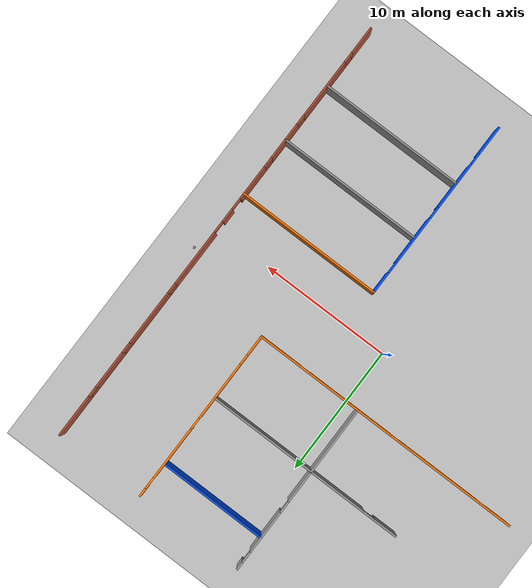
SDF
<sdf version="1.6">
 <world name="default">
  <model name="ground_plane">
   <static>1</static>
   <link name="link">
    <collision name="collision">
     <geometry><plane><normal>0 0 1</normal><size>100 100</size></plane></geometry>
     <surface>
      <contact><collide_bitmask>65535</collide_bitmask></contact>
      <friction><ode><mu>100</mu><mu2>50</mu2></ode></friction>
     </surface>
    </collision>
    <visual name="visual">
     <cast_shadows>0</cast_shadows>
     <geometry><plane><normal>0 0 1</normal><size>100 100</size></plane></geometry>
     <material>
      <script><uri>file://media/materials/scripts/gazebo.material</uri><name>Gazebo/Grey</name></script>
     </material>
    </visual>
   </link>
  </model>
  <model name="mybuilding">
   <pose>-3.17483 0.2831 0 0 -0 0</pose>
   <link name="Wall_20">
    <pose>6.31065 -10.25 0 0 -0 1.5708</pose>
    <visual name="Wall_20_Visual_0">
     <pose>-5.98664 0 1.25 0 -0 0</pose>
     <geometry><box><size>2.27671 0.15 2.5</size></box></geometry>
     <material>
      <script><uri>file://media/materials/scripts/gazebo.material</uri><name>Gazebo/Grey</name></script>
      <ambient>0 0.333333 1 1</ambient>
     </material>
     <meta><layer>0</layer></meta>
    </visual>
    <collision name="Wall_20_Collision_0">
     <geometry><box><size>2.27671 0.15 2.5</size></box></geometry>
     <pose>-5.98664 0 1.25 0 -0 0</pose>
    </collision>
    <visual name="Wall_20_Visual_1">
     <pose>-2.09265 0 1.25 0 -0 0</pose>
     <geometry><box><size>3.71127 0.15 2.5</size></box></geometry>
     <material>
      <script><uri>file://media/materials/scripts/gazebo.material</uri><name>Gazebo/Grey</name></script>
      <ambient>0 0.333333 1 1</ambient>
     </material>
     <meta><layer>0</layer></meta>
    </visual>
    <collision name="Wall_20_Collision_1">
     <geometry><box><size>3.71127 0.15 2.5</size></box></geometry>
     <pose>-2.09265 0 1.25 0 -0 0</pose>
    </collision>
    <visual name="Wall_20_Visual_2">
     <pose>2.56568 0 1.25 0 -0 0</pose>
     <geometry><box><size>3.80538 0.15 2.5</size></box></geometry>
     <material>
      <script><uri>file://media/materials/scripts/gazebo.material</uri><name>Gazebo/Grey</name></script>
      <ambient>0 0.333333 1 1</ambient>
     </material>
     <meta><layer>0</layer></meta>
    </visual>
    <collision name="Wall_20_Collision_2">
     <geometry><box><size>3.80538 0.15 2.5</size></box></geometry>
     <pose>2.56568 0 1.25 0 -0 0</pose>
    </collision>
    <visual name="Wall_20_Visual_3">
     <pose>6.24668 0 1.25 0 -0 0</pose>
     <geometry><box><size>1.75663 0.15 2.5</size></box></geometry>
     <material>
      <script><uri>file://media/materials/scripts/gazebo.material</uri><name>Gazebo/Grey</name></script>
      <ambient>0 0.333333 1 1</ambient>
     </material>
     <meta><layer>0</layer></meta>
    </visual>
    <collision name="Wall_20_Collision_3">
     <geometry><box><size>1.75663 0.15 2.5</size></box></geometry>
     <pose>6.24668 0 1.25 0 -0 0</pose>
    </collision>
    <visual name="Wall_20_Visual_4">
     <pose>-4.39829 0 2.25 0 -0 0</pose>
     <geometry><box><size>0.9 0.15 0.5</size></box></geometry>
     <material>
      <script><uri>file://media/materials/scripts/gazebo.material</uri><name>Gazebo/Grey</name></script>
      <ambient>0 0.333333 1 1</ambient>
     </material>
     <meta><layer>0</layer></meta>
    </visual>
    <collision name="Wall_20_Collision_4">
     <geometry><box><size>0.9 0.15 0.5</size></box></geometry>
     <pose>-4.39829 0 2.25 0 -0 0</pose>
    </collision>
    <visual name="Wall_20_Visual_5">
     <pose>0.212986 0 2.25 0 -0 0</pose>
     <geometry><box><size>0.9 0.15 0.5</size></box></geometry>
     <material>
      <script><uri>file://media/materials/scripts/gazebo.material</uri><name>Gazebo/Grey</name></script>
      <ambient>0 0.333333 1 1</ambient>
     </material>
     <meta><layer>0</layer></meta>
    </visual>
    <collision name="Wall_20_Collision_5">
     <geometry><box><size>0.9 0.15 0.5</size></box></geometry>
     <pose>0.212986 0 2.25 0 -0 0</pose>
    </collision>
    <visual name="Wall_20_Visual_6">
     <pose>4.91837 0 2.25 0 -0 0</pose>
     <geometry><box><size>0.9 0.15 0.5</size></box></geometry>
     <material>
      <script><uri>file://media/materials/scripts/gazebo.material</uri><name>Gazebo/Grey</name></script>
      <ambient>0 0.333333 1 1</ambient>
     </material>
     <meta><layer>0</layer></meta>
    </visual>
    <collision name="Wall_20_Collision_6">
     <geometry><box><size>0.9 0.15 0.5</size></box></geometry>
     <pose>4.91837 0 2.25 0 -0 0</pose>
    </collision>
   </link>
   <link name="Wall_21">
    <collision name="Wall_21_Collision">
     <geometry><box><size>11.25 0.15 2.5</size></box></geometry>
     <pose>0 0 1.25 0 -0 0</pose>
    </collision>
    <visual name="Wall_21_Visual">
     <pose>0 0 1.25 0 -0 0</pose>
     <geometry><box><size>11.25 0.15 2.5</size></box></geometry>
     <material>
      <script><uri>file://media/materials/scripts/gazebo.material</uri><name>Gazebo/Grey</name></script>
      <ambient>0.996078 0.47451 0.0196078 1</ambient>
     </material>
     <meta><layer>0</layer></meta>
    </visual>
    <pose>11.8606 -3.19998 0 0 -0 0</pose>
   </link>
   <link name="Wall_23">
    <collision name="Wall_23_Collision">
     <geometry><box><size>11.25 0.15 2.5</size></box></geometry>
     <pose>0 0 1.25 0 -0 0</pose>
    </collision>
    <visual name="Wall_23_Visual">
     <pose>0 0 1.25 0 -0 0</pose>
     <geometry><box><size>11.25 0.15 2.5</size></box></geometry>
     <material>
      <script><uri>file://media/materials/scripts/gazebo.material</uri><name>Gazebo/Grey</name></script>
      <ambient>1 1 1 1</ambient>
     </material>
     <meta><layer>0</layer></meta>
    </visual>
    <pose>11.8606 -7.84879 0 0 -0 0</pose>
   </link>
   <link name="Wall_25">
    <collision name="Wall_25_Collision">
     <geometry><box><size>11 0.15 2.5</size></box></geometry>
     <pose>0 0 1.25 0 -0 0</pose>
    </collision>
    <visual name="Wall_25_Visual">
     <pose>0 0 1.25 0 -0 0</pose>
     <geometry><box><size>11 0.15 2.5</size></box></geometry>
     <material>
      <script><uri>file://media/materials/scripts/gazebo.material</uri><name>Gazebo/Grey</name></script>
      <ambient>1 1 1 1</ambient>
     </material>
     <meta><layer>0</layer></meta>
    </visual>
    <pose>11.8292 -12.5276 0 0 -0 0</pose>
   </link>
   <link name="Wall_35">
    <pose>0.006793 3.83302 0 0 -0 0</pose>
    <visual name="Wall_35_Visual_0">
     <pose>-9.77473 0 1.25 0 -0 0</pose>
     <geometry><box><size>1.70054 0.15 2.5</size></box></geometry>
     <material>
      <script><uri>file://media/materials/scripts/gazebo.material</uri><name>Gazebo/Grey</name></script>
      <ambient>0.996078 0.47451 0.0196078 1</ambient>
     </material>
     <meta><layer>0</layer></meta>
    </visual>
    <collision name="Wall_35_Collision_0">
     <geometry><box><size>1.70054 0.15 2.5</size></box></geometry>
     <pose>-9.77473 0 1.25 0 -0 0</pose>
    </collision>
    <visual name="Wall_35_Visual_1">
     <pose>-4.71016 0 1.25 0 -0 0</pose>
     <geometry><box><size>6.62861 0.15 2.5</size></box></geometry>
     <material>
      <script><uri>file://media/materials/scripts/gazebo.material</uri><name>Gazebo/Grey</name></script>
      <ambient>0.996078 0.47451 0.0196078 1</ambient>
     </material>
     <meta><layer>0</layer></meta>
    </visual>
    <collision name="Wall_35_Collision_1">
     <geometry><box><size>6.62861 0.15 2.5</size></box></geometry>
     <pose>-4.71016 0 1.25 0 -0 0</pose>
    </collision>
    <visual name="Wall_35_Visual_2">
     <pose>2.9412 0 1.25 0 -0 0</pose>
     <geometry><box><size>6.87411 0.15 2.5</size></box></geometry>
     <material>
      <script><uri>file://media/materials/scripts/gazebo.material</uri><name>Gazebo/Grey</name></script>
      <ambient>0.996078 0.47451 0.0196078 1</ambient>
     </material>
     <meta><layer>0</layer></meta>
    </visual>
    <collision name="Wall_35_Collision_2">
     <geometry><box><size>6.87411 0.15 2.5</size></box></geometry>
     <pose>2.9412 0 1.25 0 -0 0</pose>
    </collision>
    <visual name="Wall_35_Visual_3">
     <pose>8.95163 0 1.25 0 -0 0</pose>
     <geometry><box><size>3.34675 0.15 2.5</size></box></geometry>
     <material>
      <script><uri>file://media/materials/scripts/gazebo.material</uri><name>Gazebo/Grey</name></script>
      <ambient>0.996078 0.47451 0.0196078 1</ambient>
     </material>
     <meta><layer>0</layer></meta>
    </visual>
    <collision name="Wall_35_Collision_3">
     <geometry><box><size>3.34675 0.15 2.5</size></box></geometry>
     <pose>8.95163 0 1.25 0 -0 0</pose>
    </collision>
    <visual name="Wall_35_Visual_4">
     <pose>-8.47446 0 2.25 0 -0 0</pose>
     <geometry><box><size>0.9 0.15 0.5</size></box></geometry>
     <material>
      <script><uri>file://media/materials/scripts/gazebo.material</uri><name>Gazebo/Grey</name></script>
      <ambient>0.996078 0.47451 0.0196078 1</ambient>
     </material>
     <meta><layer>0</layer></meta>
    </visual>
    <collision name="Wall_35_Collision_4">
     <geometry><box><size>0.9 0.15 0.5</size></box></geometry>
     <pose>-8.47446 0 2.25 0 -0 0</pose>
    </collision>
    <visual name="Wall_35_Visual_5">
     <pose>-0.945851 0 2.25 0 -0 0</pose>
     <geometry><box><size>0.9 0.15 0.5</size></box></geometry>
     <material>
      <script><uri>file://media/materials/scripts/gazebo.material</uri><name>Gazebo/Grey</name></script>
      <ambient>0.996078 0.47451 0.0196078 1</ambient>
     </material>
     <meta><layer>0</layer></meta>
    </visual>
    <collision name="Wall_35_Collision_5">
     <geometry><box><size>0.9 0.15 0.5</size></box></geometry>
     <pose>-0.945851 0 2.25 0 -0 0</pose>
    </collision>
    <visual name="Wall_35_Visual_6">
     <pose>6.82825 0 2.25 0 -0 0</pose>
     <geometry><box><size>0.9 0.15 0.5</size></box></geometry>
     <material>
      <script><uri>file://media/materials/scripts/gazebo.material</uri><name>Gazebo/Grey</name></script>
      <ambient>0.996078 0.47451 0.0196078 1</ambient>
     </material>
     <meta><layer>0</layer></meta>
    </visual>
    <collision name="Wall_35_Collision_6">
     <geometry><box><size>0.9 0.15 0.5</size></box></geometry>
     <pose>6.82825 0 2.25 0 -0 0</pose>
    </collision>
   </link>
   <link name="Wall_37">
    <pose>10.5568 10.608 0 0 -0 1.5708</pose>
    <visual name="Wall_37_Visual_0">
     <pose>-6.03177 0 1.25 0 -0 0</pose>
     <geometry><box><size>1.63647 0.15 2.5</size></box></geometry>
     <material>
      <script><uri>file://media/materials/scripts/gazebo.material</uri><name>Gazebo/Grey</name></script>
      <ambient>0.996078 0.47451 0.0196078 1</ambient>
     </material>
     <meta><layer>0</layer></meta>
    </visual>
    <collision name="Wall_37_Collision_0">
     <geometry><box><size>1.63647 0.15 2.5</size></box></geometry>
     <pose>-6.03177 0 1.25 0 -0 0</pose>
    </collision>
    <visual name="Wall_37_Visual_1">
     <pose>3.17289 0 1.25 0 -0 0</pose>
     <geometry><box><size>4.16443 0.15 2.5</size></box></geometry>
     <material>
      <script><uri>file://media/materials/scripts/gazebo.material</uri><name>Gazebo/Grey</name></script>
      <ambient>0.996078 0.47451 0.0196078 1</ambient>
     </material>
     <meta><layer>0</layer></meta>
    </visual>
    <collision name="Wall_37_Collision_1">
     <geometry><box><size>4.16443 0.15 2.5</size></box></geometry>
     <pose>3.17289 0 1.25 0 -0 0</pose>
    </collision>
    <visual name="Wall_37_Visual_2">
     <pose>6.50255 0 1.25 0 -0 0</pose>
     <geometry><box><size>0.694895 0.15 2.5</size></box></geometry>
     <material>
      <script><uri>file://media/materials/scripts/gazebo.material</uri><name>Gazebo/Grey</name></script>
      <ambient>0.996078 0.47451 0.0196078 1</ambient>
     </material>
     <meta><layer>0</layer></meta>
    </visual>
    <collision name="Wall_37_Collision_2">
     <geometry><box><size>0.694895 0.15 2.5</size></box></geometry>
     <pose>6.50255 0 1.25 0 -0 0</pose>
    </collision>
    <visual name="Wall_37_Visual_3">
     <pose>-2.51143 0 0.25 0 -0 0</pose>
     <geometry><box><size>5.40421 0.15 0.5</size></box></geometry>
     <material>
      <script><uri>file://media/materials/scripts/gazebo.material</uri><name>Gazebo/Grey</name></script>
      <ambient>0.996078 0.47451 0.0196078 1</ambient>
     </material>
     <meta><layer>0</layer></meta>
    </visual>
    <collision name="Wall_37_Collision_3">
     <geometry><box><size>5.40421 0.15 0.5</size></box></geometry>
     <pose>-2.51143 0 0.25 0 -0 0</pose>
    </collision>
    <visual name="Wall_37_Visual_4">
     <pose>-2.11143 0 1.5 0 -0 0</pose>
     <geometry><box><size>4.60421 0.15 2</size></box></geometry>
     <material>
      <script><uri>file://media/materials/scripts/gazebo.material</uri><name>Gazebo/Grey</name></script>
      <ambient>0.996078 0.47451 0.0196078 1</ambient>
     </material>
     <meta><layer>0</layer></meta>
    </visual>
    <collision name="Wall_37_Collision_4">
     <geometry><box><size>4.60421 0.15 2</size></box></geometry>
     <pose>-2.11143 0 1.5 0 -0 0</pose>
    </collision>
    <visual name="Wall_37_Visual_5">
     <pose>-4.81353 0 1.9 0 -0 0</pose>
     <geometry><box><size>0.8 0.15 1.2</size></box></geometry>
     <material>
      <script><uri>file://media/materials/scripts/gazebo.material</uri><name>Gazebo/Grey</name></script>
      <ambient>0.996078 0.47451 0.0196078 1</ambient>
     </material>
     <meta><layer>0</layer></meta>
    </visual>
    <collision name="Wall_37_Collision_5">
     <geometry><box><size>0.8 0.15 1.2</size></box></geometry>
     <pose>-4.81353 0 1.9 0 -0 0</pose>
    </collision>
    <visual name="Wall_37_Visual_6">
     <pose>5.7051 0 2.25 0 -0 0</pose>
     <geometry><box><size>0.9 0.15 0.5</size></box></geometry>
     <material>
      <script><uri>file://media/materials/scripts/gazebo.material</uri><name>Gazebo/Grey</name></script>
      <ambient>0.996078 0.47451 0.0196078 1</ambient>
     </material>
     <meta><layer>0</layer></meta>
    </visual>
    <collision name="Wall_37_Collision_6">
     <geometry><box><size>0.9 0.15 0.5</size></box></geometry>
     <pose>5.7051 0 2.25 0 -0 0</pose>
    </collision>
    <visual name="Wall_37_Visual_7">
     <pose>0.640675 0 2.25 0 -0 0</pose>
     <geometry><box><size>0.9 0.15 0.5</size></box></geometry>
     <material>
      <script><uri>file://media/materials/scripts/gazebo.material</uri><name>Gazebo/Grey</name></script>
      <ambient>0.996078 0.47451 0.0196078 1</ambient>
     </material>
     <meta><layer>0</layer></meta>
    </visual>
    <collision name="Wall_37_Collision_7">
     <geometry><box><size>0.9 0.15 0.5</size></box></geometry>
     <pose>0.640675 0 2.25 0 -0 0</pose>
    </collision>
   </link>
   <link name="Wall_41">
    <pose>2.30679 15.983 0 0 -0 1.5708</pose>
    <visual name="Wall_41_Visual_0">
     <pose>-0.747448 0 1.25 0 -0 0</pose>
     <geometry><box><size>1.2551 0.15 2.5</size></box></geometry>
     <material>
      <script><uri>file://media/materials/scripts/gazebo.material</uri><name>Gazebo/Grey</name></script>
      <ambient>1 1 1 1</ambient>
     </material>
     <meta><layer>0</layer></meta>
    </visual>
    <collision name="Wall_41_Collision_0">
     <geometry><box><size>1.2551 0.15 2.5</size></box></geometry>
     <pose>-0.747448 0 1.25 0 -0 0</pose>
    </collision>
    <visual name="Wall_41_Visual_1">
     <pose>1.07755 0 1.25 0 -0 0</pose>
     <geometry><box><size>0.594895 0.15 2.5</size></box></geometry>
     <material>
      <script><uri>file://media/materials/scripts/gazebo.material</uri><name>Gazebo/Grey</name></script>
      <ambient>1 1 1 1</ambient>
     </material>
     <meta><layer>0</layer></meta>
    </visual>
    <collision name="Wall_41_Collision_1">
     <geometry><box><size>0.594895 0.15 2.5</size></box></geometry>
     <pose>1.07755 0 1.25 0 -0 0</pose>
    </collision>
    <visual name="Wall_41_Visual_2">
     <pose>0.330105 0 2.25 0 -0 0</pose>
     <geometry><box><size>0.9 0.15 0.5</size></box></geometry>
     <material>
      <script><uri>file://media/materials/scripts/gazebo.material</uri><name>Gazebo/Grey</name></script>
      <ambient>1 1 1 1</ambient>
     </material>
     <meta><layer>0</layer></meta>
    </visual>
    <collision name="Wall_41_Collision_2">
     <geometry><box><size>0.9 0.15 0.5</size></box></geometry>
     <pose>0.330105 0 2.25 0 -0 0</pose>
    </collision>
   </link>
   <link name="Wall_43">
    <collision name="Wall_43_Collision">
     <geometry><box><size>8.25 0.15 2.5</size></box></geometry>
     <pose>0 0 1.25 0 -0 0</pose>
    </collision>
    <visual name="Wall_43_Visual">
     <pose>0 0 1.25 0 -0 0</pose>
     <geometry><box><size>8.25 0.15 2.5</size></box></geometry>
     <material>
      <script><uri>file://media/materials/scripts/gazebo.material</uri><name>Gazebo/Grey</name></script>
      <ambient>0 0.333333 1 1</ambient>
     </material>
     <meta><layer>0</layer></meta>
    </visual>
    <pose>6.35679 14.683 0 0 -0 0</pose>
   </link>
   <link name="Wall_45">
    <pose>2.30679 9.25802 0 0 0 -1.5708</pose>
    <visual name="Wall_45_Visual_0">
     <pose>-4.3795 0 1.25 0 -0 0</pose>
     <geometry><box><size>2.241 0.15 2.5</size></box></geometry>
     <material>
      <script><uri>file://media/materials/scripts/gazebo.material</uri><name>Gazebo/Grey</name></script>
      <ambient>1 1 1 1</ambient>
     </material>
     <meta><layer>0</layer></meta>
    </visual>
    <collision name="Wall_45_Collision_0">
     <geometry><box><size>2.241 0.15 2.5</size></box></geometry>
     <pose>-4.3795 0 1.25 0 -0 0</pose>
    </collision>
    <visual name="Wall_45_Visual_1">
     <pose>1.5705 0 1.25 0 -0 0</pose>
     <geometry><box><size>7.859 0.15 2.5</size></box></geometry>
     <material>
      <script><uri>file://media/materials/scripts/gazebo.material</uri><name>Gazebo/Grey</name></script>
      <ambient>1 1 1 1</ambient>
     </material>
     <meta><layer>0</layer></meta>
    </visual>
    <collision name="Wall_45_Collision_1">
     <geometry><box><size>7.859 0.15 2.5</size></box></geometry>
     <pose>1.5705 0 1.25 0 -0 0</pose>
    </collision>
    <visual name="Wall_45_Visual_2">
     <pose>-2.809 0 2.25 0 -0 0</pose>
     <geometry><box><size>0.9 0.15 0.5</size></box></geometry>
     <material>
      <script><uri>file://media/materials/scripts/gazebo.material</uri><name>Gazebo/Grey</name></script>
      <ambient>1 1 1 1</ambient>
     </material>
     <meta><layer>0</layer></meta>
    </visual>
    <collision name="Wall_45_Collision_2">
     <geometry><box><size>0.9 0.15 0.5</size></box></geometry>
     <pose>-2.809 0 2.25 0 -0 0</pose>
    </collision>
   </link>
   <link name="Wall_49">
    <pose>2.80199 9.06684 0 0 -0 0</pose>
    <visual name="Wall_49_Visual_0">
     <pose>-6.77635 0 1.25 0 -0 0</pose>
     <geometry><box><size>1.8973 0.15 2.5</size></box></geometry>
     <material>
      <script><uri>file://media/materials/scripts/gazebo.material</uri><name>Gazebo/Grey</name></script>
      <ambient>1 1 1 1</ambient>
     </material>
     <meta><layer>0</layer></meta>
    </visual>
    <collision name="Wall_49_Collision_0">
     <geometry><box><size>1.8973 0.15 2.5</size></box></geometry>
     <pose>-6.77635 0 1.25 0 -0 0</pose>
    </collision>
    <visual name="Wall_49_Visual_1">
     <pose>1.39865 0 1.25 0 -0 0</pose>
     <geometry><box><size>12.6527 0.15 2.5</size></box></geometry>
     <material>
      <script><uri>file://media/materials/scripts/gazebo.material</uri><name>Gazebo/Grey</name></script>
      <ambient>1 1 1 1</ambient>
     </material>
     <meta><layer>0</layer></meta>
    </visual>
    <collision name="Wall_49_Collision_1">
     <geometry><box><size>12.6527 0.15 2.5</size></box></geometry>
     <pose>1.39865 0 1.25 0 -0 0</pose>
    </collision>
    <visual name="Wall_49_Visual_2">
     <pose>-5.3777 0 2.25 0 -0 0</pose>
     <geometry><box><size>0.9 0.15 0.5</size></box></geometry>
     <material>
      <script><uri>file://media/materials/scripts/gazebo.material</uri><name>Gazebo/Grey</name></script>
      <ambient>1 1 1 1</ambient>
     </material>
     <meta><layer>0</layer></meta>
    </visual>
    <collision name="Wall_49_Collision_2">
     <geometry><box><size>0.9 0.15 0.5</size></box></geometry>
     <pose>-5.3777 0 2.25 0 -0 0</pose>
    </collision>
   </link>
   <link name="Wall_7">
    <pose>17.4025 -0.008779 0 0 -0 1.5708</pose>
    <visual name="Wall_7_Visual_0">
     <pose>-16.4134 0 1.25 0 -0 0</pose>
     <geometry><box><size>2.17315 0.15 2.5</size></box></geometry>
     <material>
      <script><uri>file://media/materials/scripts/gazebo.material</uri><name>Gazebo/Bricks</name></script>
      <ambient>1 1 1 1</ambient>
     </material>
     <meta><layer>0</layer></meta>
    </visual>
    <collision name="Wall_7_Collision_0">
     <geometry><box><size>2.17315 0.15 2.5</size></box></geometry>
     <pose>-16.4134 0 1.25 0 -0 0</pose>
    </collision>
    <visual name="Wall_7_Visual_1">
     <pose>-1.32327 0 1.25 0 -0 0</pose>
     <geometry><box><size>1.07626 0.15 2.5</size></box></geometry>
     <material>
      <script><uri>file://media/materials/scripts/gazebo.material</uri><name>Gazebo/Bricks</name></script>
      <ambient>1 1 1 1</ambient>
     </material>
     <meta><layer>0</layer></meta>
    </visual>
    <collision name="Wall_7_Collision_1">
     <geometry><box><size>1.07626 0.15 2.5</size></box></geometry>
     <pose>-1.32327 0 1.25 0 -0 0</pose>
    </collision>
    <visual name="Wall_7_Visual_2">
     <pose>2.32236 0 1.25 0 -0 0</pose>
     <geometry><box><size>4.41499 0.15 2.5</size></box></geometry>
     <material>
      <script><uri>file://media/materials/scripts/gazebo.material</uri><name>Gazebo/Bricks</name></script>
      <ambient>1 1 1 1</ambient>
     </material>
     <meta><layer>0</layer></meta>
    </visual>
    <collision name="Wall_7_Collision_2">
     <geometry><box><size>4.41499 0.15 2.5</size></box></geometry>
     <pose>2.32236 0 1.25 0 -0 0</pose>
    </collision>
    <visual name="Wall_7_Visual_3">
     <pose>-9.04412 0 0.25 0 -0 0</pose>
     <geometry><box><size>12.5655 0.15 0.5</size></box></geometry>
     <material>
      <script><uri>file://media/materials/scripts/gazebo.material</uri><name>Gazebo/Bricks</name></script>
      <ambient>1 1 1 1</ambient>
     </material>
     <meta><layer>0</layer></meta>
    </visual>
    <collision name="Wall_7_Collision_3">
     <geometry><box><size>12.5655 0.15 0.5</size></box></geometry>
     <pose>-9.04412 0 0.25 0 -0 0</pose>
    </collision>
    <visual name="Wall_7_Visual_4">
     <pose>11.0149 0 0.25 0 -0 0</pose>
     <geometry><box><size>12.9701 0.15 0.5</size></box></geometry>
     <material>
      <script><uri>file://media/materials/scripts/gazebo.material</uri><name>Gazebo/Bricks</name></script>
      <ambient>1 1 1 1</ambient>
     </material>
     <meta><layer>0</layer></meta>
    </visual>
    <collision name="Wall_7_Collision_4">
     <geometry><box><size>12.9701 0.15 0.5</size></box></geometry>
     <pose>11.0149 0 0.25 0 -0 0</pose>
    </collision>
    <visual name="Wall_7_Visual_5">
     <pose>-12.2448 0 1.5 0 -0 0</pose>
     <geometry><box><size>4.56413 0.15 2</size></box></geometry>
     <material>
      <script><uri>file://media/materials/scripts/gazebo.material</uri><name>Gazebo/Bricks</name></script>
      <ambient>1 1 1 1</ambient>
     </material>
     <meta><layer>0</layer></meta>
    </visual>
    <collision name="Wall_7_Collision_5">
     <geometry><box><size>4.56413 0.15 2</size></box></geometry>
     <pose>-12.2448 0 1.5 0 -0 0</pose>
    </collision>
    <visual name="Wall_7_Visual_6">
     <pose>-7.72762 0 1.5 0 -0 0</pose>
     <geometry><box><size>2.8702 0.15 2</size></box></geometry>
     <material>
      <script><uri>file://media/materials/scripts/gazebo.material</uri><name>Gazebo/Bricks</name></script>
      <ambient>1 1 1 1</ambient>
     </material>
     <meta><layer>0</layer></meta>
    </visual>
    <collision name="Wall_7_Collision_6">
     <geometry><box><size>2.8702 0.15 2</size></box></geometry>
     <pose>-7.72762 0 1.5 0 -0 0</pose>
    </collision>
    <visual name="Wall_7_Visual_7">
     <pose>-4.12696 0 1.5 0 -0 0</pose>
     <geometry><box><size>2.73112 0.15 2</size></box></geometry>
     <material>
      <script><uri>file://media/materials/scripts/gazebo.material</uri><name>Gazebo/Bricks</name></script>
      <ambient>1 1 1 1</ambient>
     </material>
     <meta><layer>0</layer></meta>
    </visual>
    <collision name="Wall_7_Collision_7">
     <geometry><box><size>2.73112 0.15 2</size></box></geometry>
     <pose>-4.12696 0 1.5 0 -0 0</pose>
    </collision>
    <visual name="Wall_7_Visual_8">
     <pose>-4.12696 0 1.5 0 -0 0</pose>
     <geometry><box><size>2.73112 0.15 2</size></box></geometry>
     <material>
      <script><uri>file://media/materials/scripts/gazebo.material</uri><name>Gazebo/Bricks</name></script>
      <ambient>1 1 1 1</ambient>
     </material>
     <meta><layer>0</layer></meta>
    </visual>
    <collision name="Wall_7_Collision_8">
     <geometry><box><size>2.73112 0.15 2</size></box></geometry>
     <pose>-4.12696 0 1.5 0 -0 0</pose>
    </collision>
    <visual name="Wall_7_Visual_9">
     <pose>7.47076 0 1.5 0 -0 0</pose>
     <geometry><box><size>4.28181 0.15 2</size></box></geometry>
     <material>
      <script><uri>file://media/materials/scripts/gazebo.material</uri><name>Gazebo/Bricks</name></script>
      <ambient>1 1 1 1</ambient>
     </material>
     <meta><layer>0</layer></meta>
    </visual>
    <collision name="Wall_7_Collision_9">
     <geometry><box><size>4.28181 0.15 2</size></box></geometry>
     <pose>7.47076 0 1.5 0 -0 0</pose>
    </collision>
    <visual name="Wall_7_Visual_10">
     <pose>11.8938 0 1.5 0 -0 0</pose>
     <geometry><box><size>2.9643 0.15 2</size></box></geometry>
     <material>
      <script><uri>file://media/materials/scripts/gazebo.material</uri><name>Gazebo/Bricks</name></script>
      <ambient>1 1 1 1</ambient>
     </material>
     <meta><layer>0</layer></meta>
    </visual>
    <collision name="Wall_7_Collision_10">
     <geometry><box><size>2.9643 0.15 2</size></box></geometry>
     <pose>11.8938 0 1.5 0 -0 0</pose>
    </collision>
    <visual name="Wall_7_Visual_11">
     <pose>15.838 0 1.5 0 -0 0</pose>
     <geometry><box><size>3.32403 0.15 2</size></box></geometry>
     <material>
      <script><uri>file://media/materials/scripts/gazebo.material</uri><name>Gazebo/Bricks</name></script>
      <ambient>1 1 1 1</ambient>
     </material>
     <meta><layer>0</layer></meta>
    </visual>
    <collision name="Wall_7_Collision_11">
     <geometry><box><size>3.32403 0.15 2</size></box></geometry>
     <pose>15.838 0 1.5 0 -0 0</pose>
    </collision>
    <visual name="Wall_7_Visual_12">
     <pose>-14.9268 0 1.9 0 -0 0</pose>
     <geometry><box><size>0.8 0.15 1.2</size></box></geometry>
     <material>
      <script><uri>file://media/materials/scripts/gazebo.material</uri><name>Gazebo/Bricks</name></script>
      <ambient>1 1 1 1</ambient>
     </material>
     <meta><layer>0</layer></meta>
    </visual>
    <collision name="Wall_7_Collision_12">
     <geometry><box><size>0.8 0.15 1.2</size></box></geometry>
     <pose>-14.9268 0 1.9 0 -0 0</pose>
    </collision>
    <visual name="Wall_7_Visual_13">
     <pose>4.92985 0 1.9 0 -0 0</pose>
     <geometry><box><size>0.8 0.15 1.2</size></box></geometry>
     <material>
      <script><uri>file://media/materials/scripts/gazebo.material</uri><name>Gazebo/Bricks</name></script>
      <ambient>1 1 1 1</ambient>
     </material>
     <meta><layer>0</layer></meta>
    </visual>
    <collision name="Wall_7_Collision_13">
     <geometry><box><size>0.8 0.15 1.2</size></box></geometry>
     <pose>4.92985 0 1.9 0 -0 0</pose>
    </collision>
    <visual name="Wall_7_Visual_14">
     <pose>-9.56272 0 1.9 0 -0 0</pose>
     <geometry><box><size>0.8 0.15 1.2</size></box></geometry>
     <material>
      <script><uri>file://media/materials/scripts/gazebo.material</uri><name>Gazebo/Bricks</name></script>
      <ambient>1 1 1 1</ambient>
     </material>
     <meta><layer>0</layer></meta>
    </visual>
    <collision name="Wall_7_Collision_14">
     <geometry><box><size>0.8 0.15 1.2</size></box></geometry>
     <pose>-9.56272 0 1.9 0 -0 0</pose>
    </collision>
    <visual name="Wall_7_Visual_15">
     <pose>-5.89252 0 1.9 0 -0 0</pose>
     <geometry><box><size>0.8 0.15 1.2</size></box></geometry>
     <material>
      <script><uri>file://media/materials/scripts/gazebo.material</uri><name>Gazebo/Bricks</name></script>
      <ambient>1 1 1 1</ambient>
     </material>
     <meta><layer>0</layer></meta>
    </visual>
    <collision name="Wall_7_Collision_15">
     <geometry><box><size>0.8 0.15 1.2</size></box></geometry>
     <pose>-5.89252 0 1.9 0 -0 0</pose>
    </collision>
    <visual name="Wall_7_Visual_16">
     <pose>10.0117 0 1.9 0 -0 0</pose>
     <geometry><box><size>0.8 0.15 1.2</size></box></geometry>
     <material>
      <script><uri>file://media/materials/scripts/gazebo.material</uri><name>Gazebo/Bricks</name></script>
      <ambient>1 1 1 1</ambient>
     </material>
     <meta><layer>0</layer></meta>
    </visual>
    <collision name="Wall_7_Collision_16">
     <geometry><box><size>0.8 0.15 1.2</size></box></geometry>
     <pose>10.0117 0 1.9 0 -0 0</pose>
    </collision>
    <visual name="Wall_7_Visual_17">
     <pose>13.776 0 1.9 0 -0 0</pose>
     <geometry><box><size>0.8 0.15 1.2</size></box></geometry>
     <material>
      <script><uri>file://media/materials/scripts/gazebo.material</uri><name>Gazebo/Bricks</name></script>
      <ambient>1 1 1 1</ambient>
     </material>
     <meta><layer>0</layer></meta>
    </visual>
    <collision name="Wall_7_Collision_17">
     <geometry><box><size>0.8 0.15 1.2</size></box></geometry>
     <pose>13.776 0 1.9 0 -0 0</pose>
    </collision>
    <visual name="Wall_7_Visual_18">
     <pose>-0.335138 0 2.25 0 -0 0</pose>
     <geometry><box><size>0.9 0.15 0.5</size></box></geometry>
     <material>
      <script><uri>file://media/materials/scripts/gazebo.material</uri><name>Gazebo/Bricks</name></script>
      <ambient>1 1 1 1</ambient>
     </material>
     <meta><layer>0</layer></meta>
    </visual>
    <collision name="Wall_7_Collision_18">
     <geometry><box><size>0.9 0.15 0.5</size></box></geometry>
     <pose>-0.335138 0 2.25 0 -0 0</pose>
    </collision>
    <visual name="Wall_7_Visual_19">
     <pose>-2.3114 0 2.25 0 -0 0</pose>
     <geometry><box><size>0.9 0.15 0.5</size></box></geometry>
     <material>
      <script><uri>file://media/materials/scripts/gazebo.material</uri><name>Gazebo/Bricks</name></script>
      <ambient>1 1 1 1</ambient>
     </material>
     <meta><layer>0</layer></meta>
    </visual>
    <collision name="Wall_7_Collision_19">
     <geometry><box><size>0.9 0.15 0.5</size></box></geometry>
     <pose>-2.3114 0 2.25 0 -0 0</pose>
    </collision>
    <visual name="Wall_7_Visual_20">
     <pose>-2.3114 0 2.25 0 -0 0</pose>
     <geometry><box><size>0.9 0.15 0.5</size></box></geometry>
     <material>
      <script><uri>file://media/materials/scripts/gazebo.material</uri><name>Gazebo/Bricks</name></script>
      <ambient>1 1 1 1</ambient>
     </material>
     <meta><layer>0</layer></meta>
    </visual>
    <collision name="Wall_7_Collision_20">
     <geometry><box><size>0.9 0.15 0.5</size></box></geometry>
     <pose>-2.3114 0 2.25 0 -0 0</pose>
    </collision>
   </link>
   <static>1</static>
  </model>
  <model name="my_ball">
   <link name="link">
    <inertial>
     <mass>0.1</mass>
     <inertia><ixx>0.1</ixx><ixy>0</ixy><ixz>0</ixz><iyy>0.1</iyy><iyz>0</iyz><izz>0.1</izz></inertia>
    </inertial>
    <visual name="visual">
     <geometry><sphere><radius>0.1</radius></sphere></geometry>
     <material>
      <script><name>Gazebo/Grey</name><uri>file://media/materials/scripts/gazebo.material</uri></script>
      <shader type="pixel"><normal_map>__default__</normal_map></shader>
      <ambient>1 1 1 1</ambient>
      <diffuse>1 1 1 1</diffuse>
      <specular>1 1 1 1</specular>
      <emissive>1 1 1 1</emissive>
     </material>
    </visual>
    <collision name="collision">
     <geometry><sphere><radius>0.1</radius></sphere></geometry>
     <surface>
      <friction>
       <ode><mu>1</mu><mu2>1</mu2><fdir1>0 0 0</fdir1><slip1>0</slip1><slip2>0</slip2></ode>
       <torsional>
        <coefficient>1</coefficient>
        <patch_radius>0</patch_radius>
        <surface_radius>0</surface_radius>
        <use_patch_radius>1</use_patch_radius>
        <ode><slip>0</slip></ode>
       </torsional>
      </friction>
      <bounce><restitution_coefficient>0</restitution_coefficient><threshold>1e+06</threshold></bounce>
      <contact>
       <collide_without_contact>0</collide_without_contact>
       <collide_without_contact_bitmask>1</collide_without_contact_bitmask>
       <collide_bitmask>1</collide_bitmask>
       <ode>
        <soft_cfm>0</soft_cfm>
        <soft_erp>0.2</soft_erp>
        <kp>1e+13</kp>
        <kd>1</kd>
        <max_vel>0.01</max_vel>
        <min_depth>0</min_depth>
       </ode>
       <bullet>
        <split_impulse>1</split_impulse>
        <split_impulse_penetration_threshold>-0.01</split_impulse_penetration_threshold>
        <soft_cfm>0</soft_cfm>
        <soft_erp>0.2</soft_erp>
        <kp>1e+13</kp>
        <kd>1</kd>
       </bullet>
      </contact>
     </surface>
    </collision>
   </link>
   <static>0</static>
   <pose>14.9105 2.0297 0.1 0 -0 0</pose>
  </model>
 </world>
</sdf>
